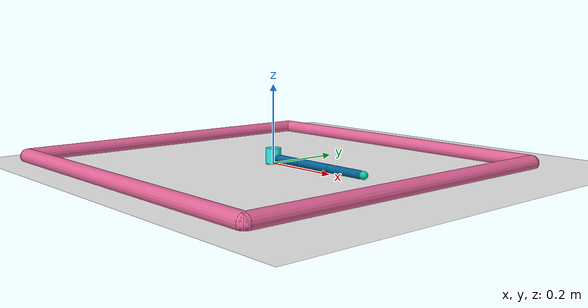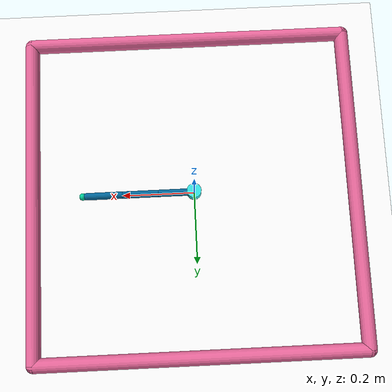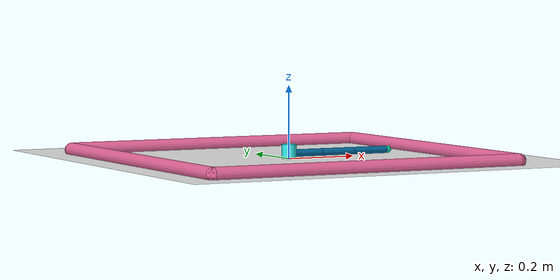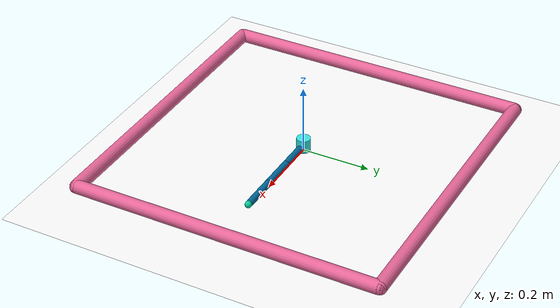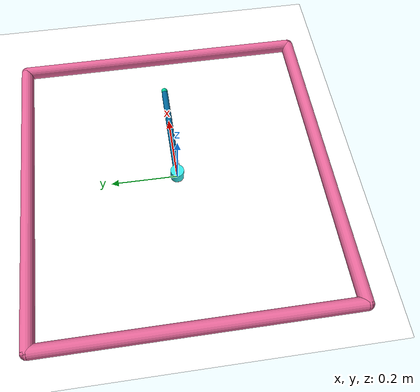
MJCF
<mujoco model="reacher3">
	<compiler angle="radian" inertiafromgeom="true"/>
	<default>
		<joint armature="1" damping="1" limited="true"/>
		<geom condim="1" contype="0" friction="0.1 0.001 0.001" rgba="0.7 0.7 0 1" density="1.0" />
	</default>
	<option gravity="0 0 -9.81" integrator="RK4" timestep="0.005"/>

    <asset>
      <texture name="grid" type="2d" builtin="checker" rgb1=".6 .6 .6"
        rgb2=".8 .8 .8" width="100" height="100" mark="edge" markrgb="0.4 0.4 0.4"/>
      <material name="grid" texture="grid" texrepeat="10 10" texuniform="true"
        reflectance="0"/>
    </asset>

	<worldbody>

	    <light name="top1" pos="0.5 0.5 1"/>
	    <light name="top2" pos="-0.5 0.5 1"/>
	    <light name="top3" pos="0.5 -0.5 1"/>
	    <light name="top4" pos="-0.5 -0.5 1"/>

		<!-- Arena -->
		<geom type="plane" name="ground" pos="0.05 0.05 0" rgba="0.99 0.99 0.99 1" size="0.6 0.6 1"  material="grid" conaffinity="0" contype="0" />
		<geom conaffinity="0" fromto="-.45 -.45 .01 .45 -.45 .01" name="sideS" rgba="0.9 0.4 0.6 1" size=".02" type="capsule"/>
		<geom conaffinity="0" fromto=" .45 -.45 .01 .45  .45 .01" name="sideE" rgba="0.9 0.4 0.6 1" size=".02" type="capsule"/>
		<geom conaffinity="0" fromto="-.45  .45 .01 .45  .45 .01" name="sideN" rgba="0.9 0.4 0.6 1" size=".02" type="capsule"/>
		<geom conaffinity="0" fromto="-.45 -.45 .01 -.45 .45 .01" name="sideW" rgba="0.9 0.4 0.6 1" size=".02" type="capsule"/>

		<!-- Arm -->
		<geom fromto="0 0 0 0 0 0.025" name="root" rgba="0.9 0.4 0.6 1" size=".011" type="cylinder" conaffinity="1" contype="1" />
		<body name="body0" pos="0 0 .015">
			<geom fromto="0 0 0 0.1 0 0" name="link0" rgba="0.0 0.4 0.6 1" size=".01" type="capsule" conaffinity="1" contype="1" />
			<joint axis="0 0 1" limited="true" name="joint0" pos="0 0 0" range="-3.14 3.14" type="hinge" stiffness="0.01" />
			<body name="body1" pos="0.1 0 0">
				<joint axis="0 0 1" limited="true" name="joint1" pos="0 0 0" range="-1.8 1.8" type="hinge" stiffness="0.01"/>
				<geom fromto="0 0 0 0.1 0 0" name="link1" rgba="0.0 0.4 0.6 1" size=".01" type="capsule" conaffinity="1" contype="1" />
			    <body name="body2" pos="0.1 0 0">
				    <joint axis="0 0 1" limited="true" name="joint2" pos="0 0 0" range="-1.8 1.8" type="hinge" stiffness="0.01" />
				    <geom fromto="0 0 0 0.1 0 0" name="link2" rgba="0.0 0.4 0.6 1" size=".01" type="capsule" conaffinity="1" contype="1" />
				    <body name="fingertip" pos="0.11 0 0">
					    <geom name="fingertip" pos="0 0 0" rgba="0.0 0.8 0.6 1" size=".01" type="sphere" conaffinity="1" contype="1" friction="10.0 0.1 0.1" density="10"/>
				    </body>
    			</body>
			</body>
		</body>

		<!-- Target -->
		<body name="target" pos="0 0 .001">
    		<geom conaffinity="0" contype="0" name="target" rgba="0.9 0.2 0.2 1" size=".02 0.001" type="cylinder"/>
			<joint armature="0" axis="1 0 0" damping="0" limited="true" name="target_x" pos="0 0 0" range="-.37 .37" ref="0" stiffness="0" type="slide"/>
			<joint armature="0" axis="0 1 0" damping="0" limited="true" name="target_y" pos="0 0 0" range="-.37 .37" ref="0" stiffness="0" type="slide"/>
		</body>

		<!-- Objects -->
		<body name="obstacle1" pos="0 0 0.02" >
            <geom type="cylinder" name="obs1" rgba="0.2 0.9 0.9 1"  size="0.02 0.02" density="0.1" contype="1" conaffinity="1" />
            <!-- joint name="jobs" type="free" stiffness="0" damping="0" frictionloss="0" armature="0"/ -->
            <joint type="slide" name="obs1_x" pos="0 0 0" axis="1 0 0" range="-0.4 0.4" stiffness="0" damping="0" frictionloss="0.001" armature="0" />
            <joint type="slide" name="obs1_y" pos="0 0 0" axis="0 1 0" range="-0.4 0.4" stiffness="0" damping="0" frictionloss="0.001" armature="0" />
        </body>

		<body name="obstacle2" pos="0 0 0.02" >
            <geom type="cylinder" name="obs2" rgba="0.2 0.9 0.9 1" size="0.02 0.02" density="0.1" contype="1" conaffinity="1" />
            <joint type="slide" name="obs2_x" pos="0 0 0" axis="1 0 0" range="-0.4 0.4" stiffness="0" damping="0" frictionloss="0.001" armature="0" />
            <joint type="slide" name="obs2_y" pos="0 0 0" axis="0 1 0" range="-0.4 0.4" stiffness="0" damping="0" frictionloss="0.001" armature="0" />
        </body>

		<body name="obstacle3" pos="0 0 0.02" >
            <geom type="cylinder" name="obs3" rgba="0.2 0.9 0.9 1" size="0.02 0.02" density="0.1" contype="1" conaffinity="1" />
            <joint type="slide" name="obs3_x" pos="0 0 0" axis="1 0 0" range="-0.4 0.4" stiffness="0" damping="0" frictionloss="0.001" armature="0" />
            <joint type="slide" name="obs3_y" pos="0 0 0" axis="0 1 0" range="-0.4 0.4" stiffness="0" damping="0" frictionloss="0.001" armature="0" />
        </body>

	</worldbody>

	<actuator>
		<motor ctrllimited="true" ctrlrange="-1.0 1.0" gear="200.0" joint="joint0"/>
		<motor ctrllimited="true" ctrlrange="-1.0 1.0" gear="200.0" joint="joint1"/>
		<motor ctrllimited="true" ctrlrange="-1.0 1.0" gear="200.0" joint="joint2"/>
	</actuator>

	<contact>
		<pair geom1="link0" geom2="obs1" />
		<pair geom1="link0" geom2="obs2" />
		<pair geom1="link0" geom2="obs3" />
		<pair geom1="link1" geom2="obs1" />
		<pair geom1="link1" geom2="obs2" />
		<pair geom1="link1" geom2="obs3" />
		<pair geom1="link2" geom2="obs1" />
		<pair geom1="link2" geom2="obs2" />
		<pair geom1="link2" geom2="obs3" />
		<pair geom1="fingertip" geom2="obs1" />
		<pair geom1="fingertip" geom2="obs2" />
		<pair geom1="fingertip" geom2="obs3" />
	</contact>

</mujoco>
